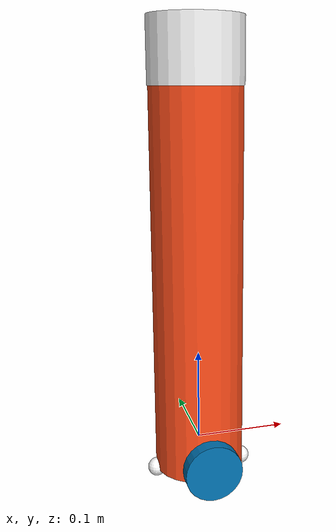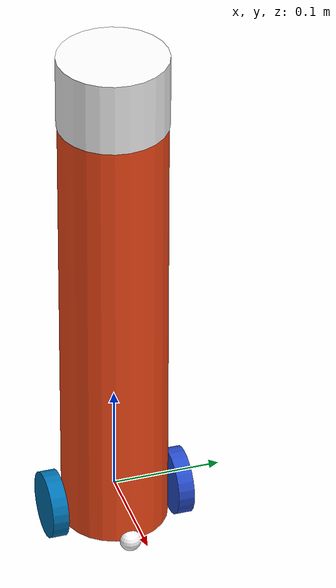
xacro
<?xml version="1.0"?>
<robot xmlns:xacro="http://www.ros.org/wiki/xacro"  name="robot">

    <xacro:arg name="use_ros2_control" default="true"/>
    <xacro:arg name="sim_mode" default="false"/>

    <xacro:include filename="robot_core.xacro" />
    <xacro:include filename="ros2_control.xacro" />
    <xacro:include filename="lidar.xacro" />

</robot>

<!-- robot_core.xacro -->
<robot xmlns:xacro="http://ros.org/wiki/xacro">

    <xacro:include filename="inertial_macros.xacro"/>

    <xacro:property name="chassis_radius" value="0.049"/>
    <xacro:property name="chassis_height" value="0.453"/>

    <xacro:property name="wheel_radius" value="0.031"/>
    <xacro:property name="wheel_thickness" value="0.015"/>
    <xacro:property name="wheel_offset_y" value="0.06"/>
    <xacro:property name="wheel_offset_z" value="-0.011"/>
    <xacro:property name="wheel_offset_x" value="0.065"/>
    <xacro:property name="wheel_mass" value="0.03"/>

    <xacro:property name="caster_wheel_mass" value="0.01"/>
    <xacro:property name="caster_wheel_radius" value="0.01"/>
    <xacro:property name="caster_wheel_offset_x" value="0.049"/>
    <xacro:property name="caster_wheel_offset_z" value="${wheel_offset_z - wheel_radius + caster_wheel_radius}"/>

    <material name="white">
        <color rgba="1 1 1 1"/>
    </material>

    <material name="orange">
        <color rgba="1 0.3 0.1 1"/>
    </material>

    <material name="blue">
        <color rgba="0.2 0.2 1 1"/>
    </material>

    <material name="black">
        <color rgba="0 0 0 1"/>
    </material>

    <link name="base_link">
    </link>

    <link name="base_footprint">
    </link>

    <joint name="base_joint" type="fixed">
        <parent link="base_link"/>
        <child link="base_footprint"/>
        <origin xyz="0.0 0.0 0.0" rpy="0 0 0"/>
    </joint>

    <!--Chassis Link-->

    <joint name="chassis_joint" type="fixed">
        <parent link="base_link"/>
        <child link="chassis"/>
        <origin xyz="${-chassis_radius} 0 ${-wheel_radius}"/>
    </joint>

    <link name="chassis">
        <visual>
            <origin xyz="0.049 0 ${chassis_height/2}"/>
            <geometry>
                <cylinder radius="${chassis_radius}" length="${chassis_height}"/>
            </geometry>
            <material name="orange"/>
        </visual>

        <collision>
            <origin xyz="0.049 0 ${chassis_height/2}"/>
            <geometry>
                <cylinder radius="${chassis_radius}" length="${chassis_height}"/>
            </geometry>
        </collision>
        <xacro:inertial_cylinder mass="1.0" length="${chassis_height}" radius="${chassis_radius}">
            <origin xyz="0.049 0 ${chassis_height/2}" rpy="0 0 0"/>
        </xacro:inertial_cylinder>
    </link>

    <!--Left wheel link-->
    <joint name="left_wheel_joint" type="continuous">
        <parent link="base_link"/>
        <child link="left_wheel"/>
        <origin xyz="0 ${wheel_offset_y} ${wheel_offset_z}" rpy="-${pi/2} 0 0"/>
        <axis xyz="0 0 1"/>
    </joint>

    <link name="left_wheel">
        <visual>
            <geometry>
                <cylinder radius="${wheel_radius}" length="${wheel_thickness}"/>
                <material name="blue"/>
            </geometry>
        </visual>

        <collision>
            <geometry>
                <cylinder radius="${wheel_radius}" length="${wheel_thickness}"/>
            </geometry>
        </collision>

        <xacro:inertial_cylinder mass="${wheel_mass}" length="${wheel_thickness}" radius="${wheel_radius}">
            <origin xyz="0 0 0" rpy="0 0 0"/>
        </xacro:inertial_cylinder>
    </link>

    <gazebo reference="left_wheel">
        <material>Gazebo/Blue</material>
    </gazebo>

    <!--Right wheel link-->
    <joint name="right_wheel_joint" type="continuous">
        <parent link="base_link"/>
        <child link="right_wheel"/>
        <origin xyz="0 -${wheel_offset_y} ${wheel_offset_z}" rpy="${pi/2} 0 0"/>
        <axis xyz="0 0 -1"/>
    </joint>

    <link name="right_wheel">
        <visual>
            <geometry>
                <cylinder radius="${wheel_radius}" length="${wheel_thickness}"/>
                <material name="blue"/>
            </geometry>
        </visual>

        <collision>
            <geometry>
                <cylinder radius="${wheel_radius}" length="${wheel_thickness}"/>
            </geometry>
        </collision>

        <xacro:inertial_cylinder mass="${wheel_mass}" length="${wheel_thickness}" radius="${wheel_radius}">
            <origin xyz="0 0 0" rpy="0 0 0"/>
        </xacro:inertial_cylinder>
    </link>

    <!--Front Caster wheel joint-->
    <joint name="front_caster_wheel_joint" type="fixed">
        <parent link="chassis"/>
        <child link="front_caster_wheel"/>
        <origin xyz="0 0 0"/>
    </joint>

    <link name="front_caster_wheel">
        <visual>
            <geometry>
                <sphere radius="${caster_wheel_radius}"/>
            </geometry>
            <material name="white"/>
        </visual>

        <collision>
            <geometry>
                <sphere radius="${caster_wheel_radius}"/>
            </geometry>
        </collision>

        <xacro:inertial_sphere mass="${caster_wheel_mass}" radius="${caster_wheel_radius}">
            <origin xyz="0 0 0" rpy="0 0 0"/>
        </xacro:inertial_sphere>
    </link>

    <!--Back Caster wheel joint-->
    <joint name="back_caster_wheel_joint" type="fixed">
        <parent link="chassis"/>
        <child link="back_caster_wheel"/>
        <origin xyz="${(2*chassis_radius)} 0 0"/>
    </joint>

    <link name="back_caster_wheel">
        <visual>
            <geometry>
                <sphere radius="${caster_wheel_radius}"/>
            </geometry>
            <material name="white"/>
        </visual>

        <collision>
            <geometry>
                <sphere radius="${caster_wheel_radius}"/>
            </geometry>
        </collision>

        <xacro:inertial_sphere mass="${caster_wheel_mass}" radius="${caster_wheel_radius}">
            <origin xyz="0 0 0" rpy="0 0 0"/>
        </xacro:inertial_sphere>
    </link>

</robot>

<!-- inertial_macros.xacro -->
<robot xmlns:xacro="http://www.ros.org/wiki/xacro">

<xacro:macro name="inertial_sphere" params="mass radius *origin">
    <inertial>
        <xacro:insert_block name="origin"/>
        <mass value="${mass}"/>
        <inertia ixx="${(2/5) * mass * (radius*radius)}" ixy="0.0" ixz="0.0"
                iyy="${(2/5) * mass * (radius*radius)}" iyz="0.0"
                izz="${(2/5) * mass * (radius*radius)}"/>
    </inertial>
</xacro:macro>

<xacro:macro name="inertial_cylinder" params="mass length radius *origin">
    <inertial>
        <xacro:insert_block name="origin"/>
        <mass value="${mass}"/>
        <inertia ixx="${(1/12) * mass * (3*radius*radius + length*length)}" ixy="0.0" ixz="0.0"
                iyy="${(1/12) * mass * (3*radius*radius + length*length)}" iyz="0.0"
                izz="${(1/2) * mass * (radius*radius)}"/>
    </inertial>
</xacro:macro>

</robot>

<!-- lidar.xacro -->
<robot xmlns:xacro="http://ros.org/wiki/xacro">
    <xacro:property name="chassis_radius" value="0.049"/>
    <xacro:property name="chassis_height" value="0.453"/>
    <xacro:property name="lidar_height" value="0.068"/>

    <joint name="laser_joint" type="fixed">
        <parent link="chassis"/>
        <child link="laser_frame"/>
        <origin xyz="${chassis_radius} 0 ${chassis_height}" rpy="0 0 0"/>
    </joint>

    <link name="laser_frame">
        <visual>
            <geometry>
                <cylinder radius="${chassis_radius + 0.001}" length="${lidar_height}"/>
            </geometry>
            <material name="white"/>
        </visual>

        <collision>
            <origin xyz="0.049 0 ${chassis_height/2}"/>
            <geometry>
                <cylinder radius="${chassis_radius + 0.001}" length="${lidar_height}"/>
            </geometry>
        </collision>
        <xacro:inertial_cylinder mass="0.1" length="${lidar_height}" radius="${chassis_radius + 0.001}">
            <origin xyz="0.049 0 ${chassis_height/2}" rpy="0 0 0"/>
        </xacro:inertial_cylinder>
    </link>

    <gazebo reference="laser_frame">
        <sensor name="laser" type="ray">
            <pose> 0 0 0 0 0 0 </pose>
            <visualize>true</visualize>
            <update_rate>10</update_rate>
            <ray>
                <scan>
                    <horizontal>
                        <samples>360</samples>
                        <min_angle>-3.14</min_angle>
                        <max_angle>3.14</max_angle>
                    </horizontal>
                </scan>
                <range>
                    <min>0.3</min>
                    <max>8</max>
                </range>
            </ray>

            <plugin name="laser_controller" filename="libgazebo_ros_ray_sensor.so">
                <ros>
                    <argument>~/out:=scan</argument>
                </ros>
                <output_type>sensor_msgs/LaserScan</output_type>
                <frame_name>laser_frame</frame_name>
            </plugin>

        </sensor>
    </gazebo>
</robot>
